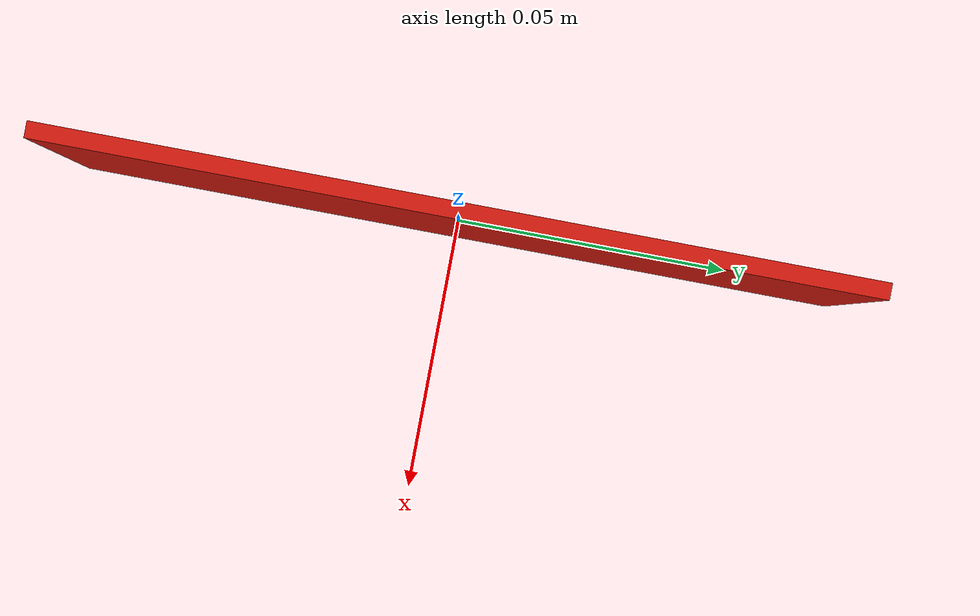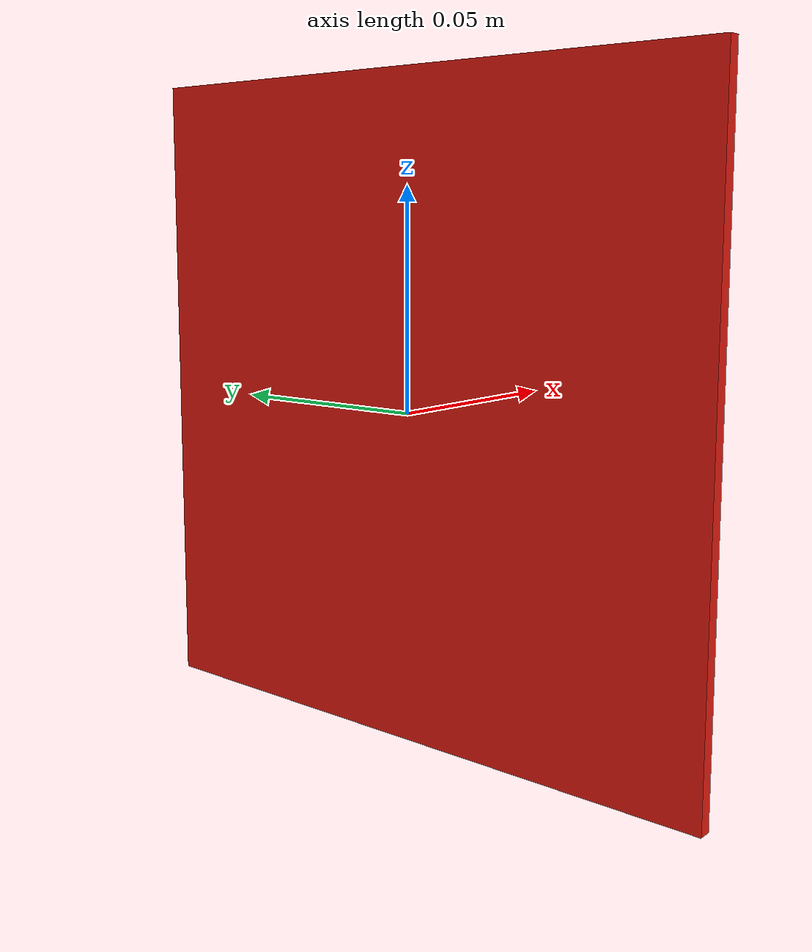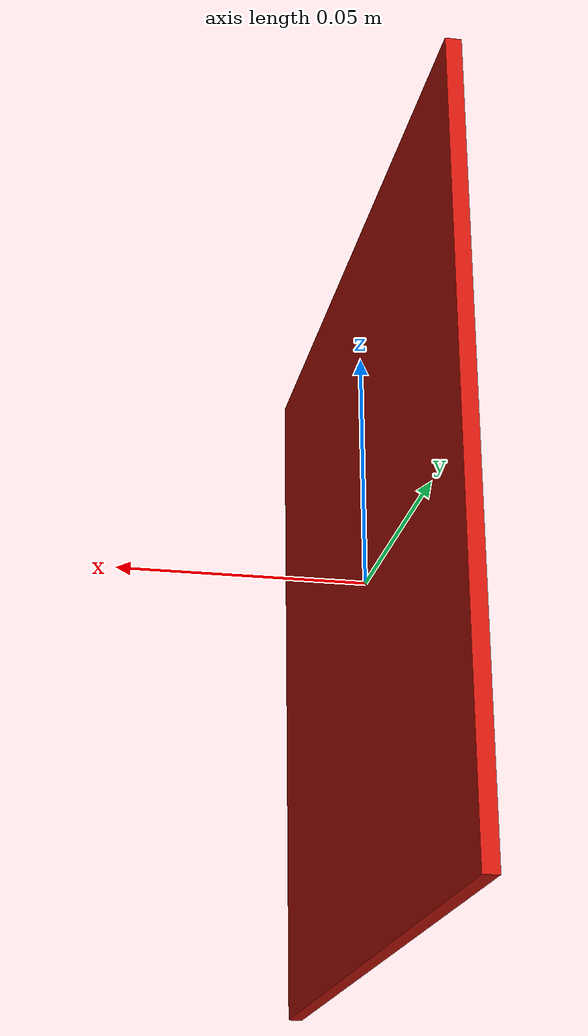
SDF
<?xml version='1.0'?>
<sdf version='1.6'>
  <model name="moving_flower">
    <static>false</static>
    <pose>0 0 0 0 0 0</pose>

    <link name="flower_link">
      <gravity>false</gravity>
      <kinematic>true</kinematic>
      <pose>0 0 0 0 0 0</pose>
      <visual name="flower_visual">
        <geometry>
          <mesh>
            <uri>model://moving_flower/moving_flower.dae</uri>
            <scale>1 1 1</scale>
          </mesh>
        </geometry>
      </visual>

      <collision name="flower_collision">
        <geometry>
          <box>
            <size>0.15 0.15 0.003</size>
          </box>
        </geometry>
      </collision>
    </link>

    <plugin name="flower_motion" filename="/home/admin_user/Desktop/04_TangoDrone/paparazzi/sw/ext/flower_motion_plugin/build/libflower_motion.so">
      <amplitude>0.3</amplitude>
      <frequency>0.0</frequency>
      <axis>x</axis>
      <start_delay>20.0</start_delay>
    </plugin>

  </model>
</sdf>
